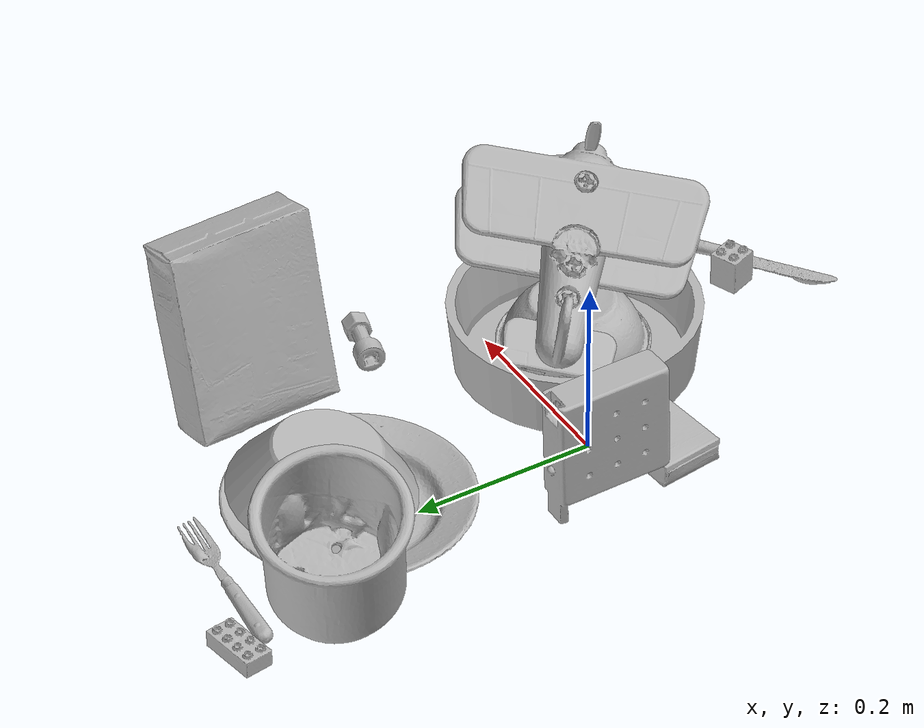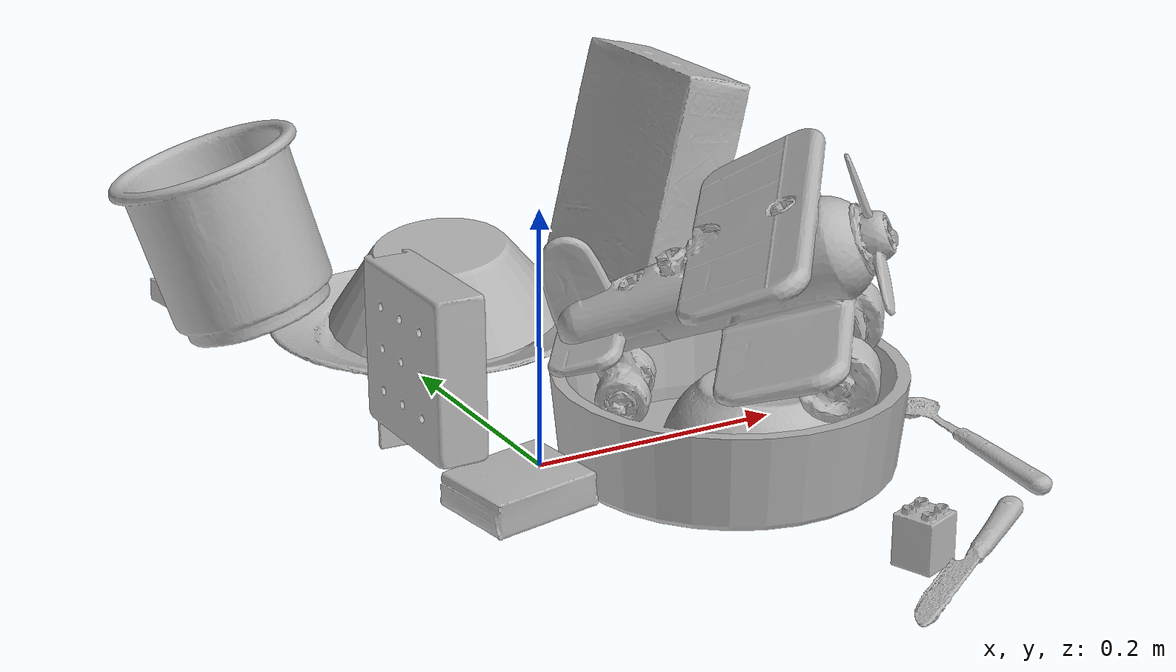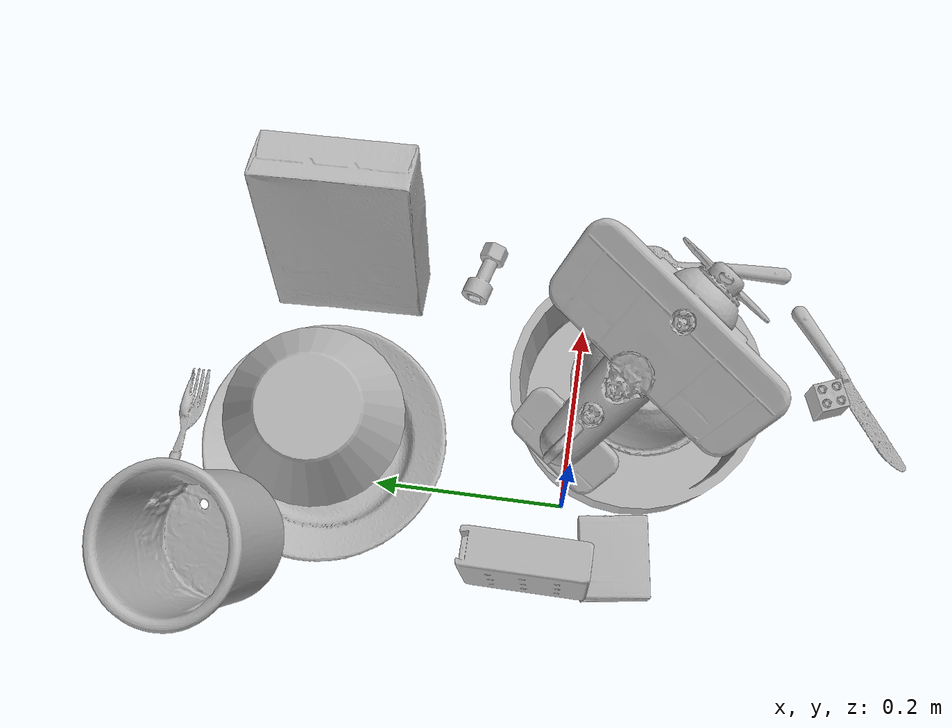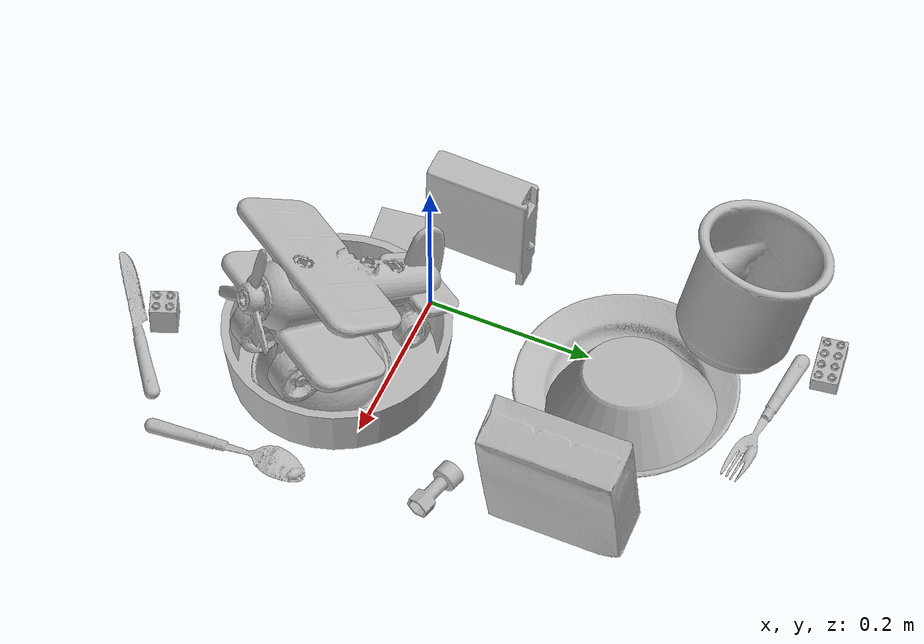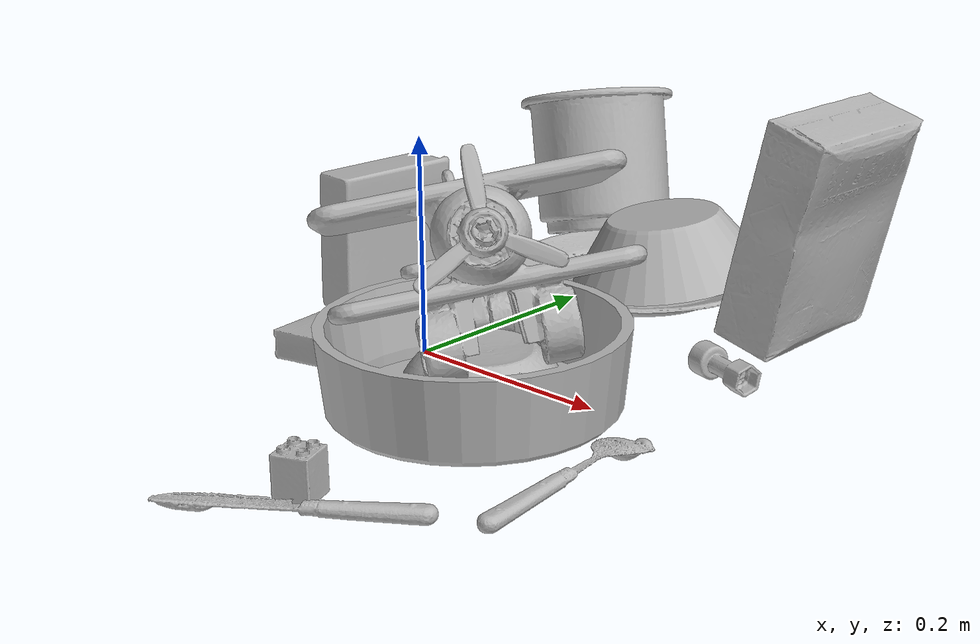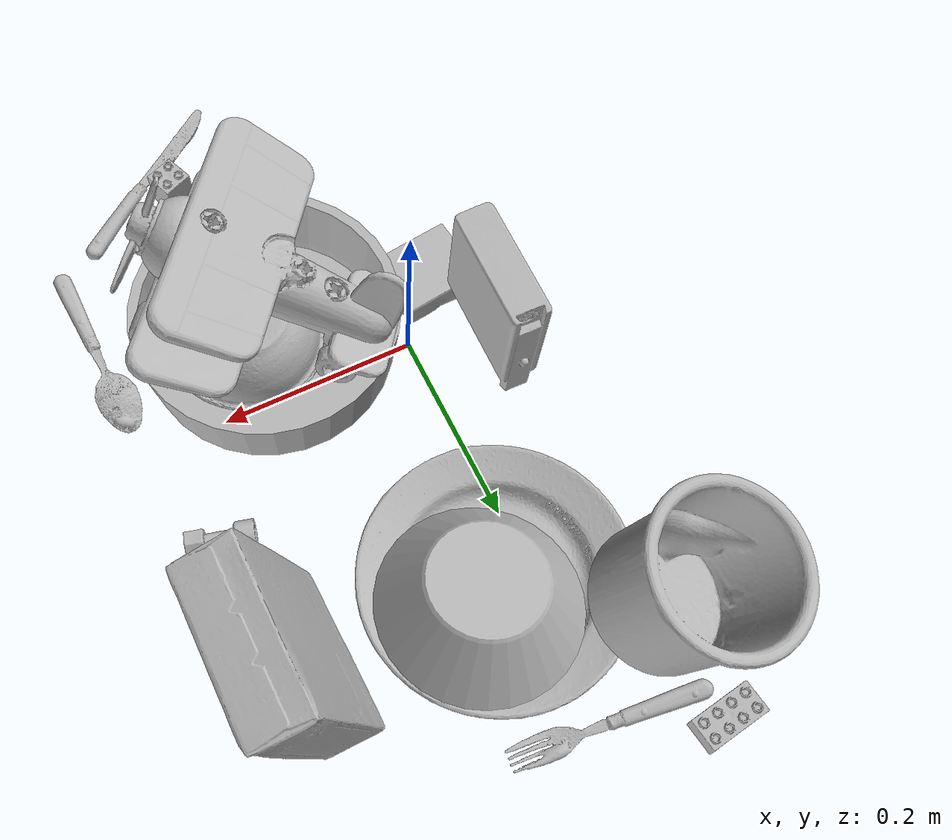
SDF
<sdf version="1.4">
  <world name="default">
    <light name="light1" type="point">
      <pose>0 0 1 0 0 0</pose>
      <diffuse>3 3 3 1</diffuse>
      <specular>3 3 3 1</specular>
    </light>
    <light name="light2" type="point">
      <pose>0 0.5 2 0 0 0</pose>
      <diffuse>1 1 1 1</diffuse>
      <specular>1 1 1 1</specular>
    </light>
    <light name="light3" type="point">
      <pose>0 0.5 2 0 0 0</pose>
      <diffuse>3 3 3 1</diffuse>
      <specular>3 3 3 1</specular>
    </light>
    <scene>
      <ambient>0.7 0.7 0.7</ambient>
    </scene>
    <model name="plate1">
      <link name="link_plate1">
        <collision name="default">
          <geometry>
            <mesh>
              <uri>model://plate/collision_meshes/collision.obj</uri>
              <scale>1.0 1.0 1.0</scale>
            </mesh>
          </geometry>
          <surface>
            <friction>
              <ode>
                <mu>0.5</mu>
                <mu2>0.5</mu2>
              </ode>
            </friction>
          <contact>
        <ode>
            <max_vel>0</max_vel>
            <min_depth>0.0001</min_depth>
            <kp>1e8</kp>
        </ode>
    </contact></surface>
        </collision>
        <visual name="default">
          <geometry>
            <mesh>
              <uri>model://plate/visual_meshes/visual.dae</uri>
              <scale>1.0 1.0 1.0</scale>
            </mesh>
          </geometry>
        </visual>
        <inertial>
          <mass>0.1516857147216797</mass>
          <pose>-0.0006044649053364992 0.00027825761935673654 -0.0010561972158029675 0.002218765199568956 -0.003225488596237322 0.4526153800388047</pose>
          <inertia>
            <ixx>0.00070958876</ixx>
            <iyy>0.0007028018</iyy>
            <izz>0.00138785</izz>
            <ixy>0</ixy>
            <ixz>0</ixz>
            <iyz>0</iyz>
          </inertia>
        </inertial>
      </link>
      <pose>0.034409523010253906 0.25961264967918396 0.013735402375459671 -1.9750560254049614e-05 -1.6433223964046853e-05 1.3377542097096438</pose>
    </model>
    <model name="plate2">
      <link name="link_plate2">
        <collision name="default">
          <geometry>
            <mesh>
              <uri>model://pan_tefal/collision_meshes/collision.obj</uri>
              <scale>1.0 1.0 1.0</scale>
            </mesh>
          </geometry>
          <surface>
            <friction>
              <ode>
                <mu>0.5</mu>
                <mu2>0.5</mu2>
              </ode>
            </friction>
          <contact>
        <ode>
            <max_vel>0</max_vel>
            <min_depth>0.0001</min_depth>
            <kp>1e8</kp>
        </ode>
    </contact></surface>
        </collision>
        <visual name="default">
          <geometry>
            <mesh>
              <uri>model://pan_tefal/visual_meshes/visual.dae</uri>
              <scale>1.0 1.0 1.0</scale>
            </mesh>
          </geometry>
        </visual>
        <inertial>
          <mass>1.0862284898757935</mass>
          <pose>-0.00018001910939347 3.2794348953757435e-05 -0.00851493515074253 0.0008190334899032376 -0.0003301482999058744 -0.3318501395419688</pose>
          <inertia>
            <ixx>0.0074981838</ixx>
            <iyy>0.007546525</iyy>
            <izz>0.013802713</izz>
            <ixy>0</ixy>
            <ixz>0</ixz>
            <iyz>0</iyz>
          </inertia>
        </inertial>
      </link>
      <pose>0.12502451241016388 -0.06135375052690506 0.03805006295442581 -4.142959909980993e-07 -1.7389965803333553e-07 2.27835147322301</pose>
    </model>
    <model name="bowl1">
      <link name="link_bowl1">
        <collision name="default">
          <geometry>
            <mesh>
              <uri>model://bowl_a/collision_meshes/collision.obj</uri>
              <scale>1.0 1.0 1.0</scale>
            </mesh>
          </geometry>
          <surface>
            <friction>
              <ode>
                <mu>0.5</mu>
                <mu2>0.5</mu2>
              </ode>
            </friction>
          <contact>
        <ode>
            <max_vel>0</max_vel>
            <min_depth>0.0001</min_depth>
            <kp>1e8</kp>
        </ode>
    </contact></surface>
        </collision>
        <visual name="default">
          <geometry>
            <mesh>
              <uri>model://bowl_a/visual_meshes/visual.dae</uri>
              <scale>1.0 1.0 1.0</scale>
            </mesh>
          </geometry>
        </visual>
        <inertial>
          <mass>0.23323877155780792</mass>
          <pose>0.0002786752884276211 4.7312129026977345e-05 -0.001376529224216938 -0.000980538139416196 -0.00109382495954127 -0.19123674059098103</pose>
          <inertia>
            <ixx>0.0006640416</ixx>
            <iyy>0.0006681184</iyy>
            <izz>0.0011810234</izz>
            <ixy>0</ixy>
            <ixz>0</ixz>
            <iyz>0</iyz>
          </inertia>
        </inertial>
      </link>
      <pose>0.056981734931468964 0.27422598004341125 0.0493699312210083 3.0626910080533536 0.09988682160589696 3.046483131313101</pose>
    </model>
    <model name="bowl2">
      <link name="link_bowl2">
        <collision name="default">
          <geometry>
            <mesh>
              <uri>model://bowl/collision_meshes/collision.obj</uri>
              <scale>1.0 1.0 1.0</scale>
            </mesh>
          </geometry>
          <surface>
            <friction>
              <ode>
                <mu>0.5</mu>
                <mu2>0.5</mu2>
              </ode>
            </friction>
          <contact>
        <ode>
            <max_vel>0</max_vel>
            <min_depth>0.0001</min_depth>
            <kp>1e8</kp>
        </ode>
    </contact></surface>
        </collision>
        <visual name="default">
          <geometry>
            <mesh>
              <uri>model://bowl/visual_meshes/visual.dae</uri>
              <scale>1.0 1.0 1.0</scale>
            </mesh>
          </geometry>
        </visual>
        <inertial>
          <mass>0.08787161856889725</mass>
          <pose>0.00020445531117729843 -0.0010302038863301277 -0.0008042651461437345 -0.015764035308279474 0.014546860922519275 0.7140443952173783</pose>
          <inertia>
            <ixx>0.00020184812</ixx>
            <iyy>0.00019733804</iyy>
            <izz>0.00033957793</izz>
            <ixy>0</ixy>
            <ixz>0</ixz>
            <iyz>0</iyz>
          </inertia>
        </inertial>
      </link>
      <pose>0.1454957276582718 -0.07274720817804337 0.034877944737672806 -3.1296835605043243 0.005008912456607935 1.4043145992927362</pose>
    </model>
    <model name="silverware1">
      <link name="link_silverware1">
        <collision name="default">
          <geometry>
            <mesh>
              <uri>model://spoon/collision_meshes/collision.obj</uri>
              <scale>1.0 1.0 1.0</scale>
            </mesh>
          </geometry>
          <surface>
            <friction>
              <ode>
                <mu>0.5</mu>
                <mu2>0.5</mu2>
              </ode>
            </friction>
          <contact>
        <ode>
            <max_vel>0</max_vel>
            <min_depth>0.0001</min_depth>
            <kp>1e8</kp>
        </ode>
    </contact></surface>
        </collision>
        <visual name="default">
          <geometry>
            <mesh>
              <uri>model://spoon/visual_meshes/visual.dae</uri>
              <scale>1.0 1.0 1.0</scale>
            </mesh>
          </geometry>
        </visual>
        <inertial>
          <mass>0.028818774968385696</mass>
          <pose>-0.0055263228714466095 -0.0016034181462600827 -0.0007271657814271748 0.03521556092832266 -0.039065843026344464 0.006150610888934851</pose>
          <inertia>
            <ixx>1.6029475e-06</ixx>
            <iyy>0.0001096545</iyy>
            <izz>0.000110445</izz>
            <ixy>0</ixy>
            <ixz>0</ixz>
            <iyz>0</iyz>
          </inertia>
        </inertial>
      </link>
      <pose>0.2923404574394226 -0.12623465061187744 0.010133746080100536 3.10494172175872 -0.06197683367509244 1.6160570616888128</pose>
    </model>
    <model name="box1">
      <link name="link_box1">
        <collision name="default">
          <geometry>
            <mesh>
              <uri>model://cracker_box/collision_meshes/collision.obj</uri>
              <scale>1.0 1.0 1.0</scale>
            </mesh>
          </geometry>
          <surface>
            <friction>
              <ode>
                <mu>0.5</mu>
                <mu2>0.5</mu2>
              </ode>
            </friction>
          <contact>
        <ode>
            <max_vel>0</max_vel>
            <min_depth>0.0001</min_depth>
            <kp>1e8</kp>
        </ode>
    </contact></surface>
        </collision>
        <visual name="default">
          <geometry>
            <mesh>
              <uri>model://cracker_box/visual_meshes/visual.dae</uri>
              <scale>1.0 1.0 1.0</scale>
            </mesh>
          </geometry>
        </visual>
        <inertial>
          <mass>2.9781224727630615</mass>
          <pose>0.0009464174509048462 0.00025434247800149024 -0.0017029534792527556 -0.0003162077703261406 -0.01110649239447325 0.0025467938390949236</pose>
          <inertia>
            <ixx>0.007575013</ixx>
            <iyy>0.012507835</iyy>
            <izz>0.017849829</izz>
            <ixy>0</ixy>
            <ixz>0</ixz>
            <iyz>0</iyz>
          </inertia>
        </inertial>
      </link>
      <pose>0.24340976774692535 0.2615981101989746 0.1084175780415535 -3.067804692599133 1.312249708520713 -3.049629635028553</pose>
    </model>
    <model name="box2">
      <link name="link_box2">
        <collision name="default">
          <geometry>
            <mesh>
              <uri>model://gelatin_box/collision_meshes/collision.obj</uri>
              <scale>1.0 1.0 1.0</scale>
            </mesh>
          </geometry>
          <surface>
            <friction>
              <ode>
                <mu>0.5</mu>
                <mu2>0.5</mu2>
              </ode>
            </friction>
          <contact>
        <ode>
            <max_vel>0</max_vel>
            <min_depth>0.0001</min_depth>
            <kp>1e8</kp>
        </ode>
    </contact></surface>
        </collision>
        <visual name="default">
          <geometry>
            <mesh>
              <uri>model://gelatin_box/visual_meshes/visual.dae</uri>
              <scale>1.0 1.0 1.0</scale>
            </mesh>
          </geometry>
        </visual>
        <inertial>
          <mass>0.16266882419586182</mass>
          <pose>0.0004319618456065655 0.00011156871914863586 -0.0003640321083366871 -0.0010503720968416132 -0.004755819155016646 0.016440559472150423</pose>
          <inertia>
            <ixx>0.00011483092</ixx>
            <iyy>8.202313e-05</iyy>
            <izz>0.00017479825</izz>
            <ixy>0</ixy>
            <ixz>0</ixz>
            <iyz>0</iyz>
          </inertia>
        </inertial>
      </link>
      <pose>-0.04976861551403999 -0.060081277042627335 0.015154507011175156 3.0937334923988904 -0.004963075067139746 1.7191702848511512</pose>
    </model>
    <model name="cup1">
      <link name="link_cup1">
        <collision name="default">
          <geometry>
            <mesh>
              <uri>model://f_cups/collision_meshes/collision.obj</uri>
              <scale>2.0 2.0 2.0</scale>
            </mesh>
          </geometry>
          <surface>
            <friction>
              <ode>
                <mu>0.5</mu>
                <mu2>0.5</mu2>
              </ode>
            </friction>
          <contact>
        <ode>
            <max_vel>0</max_vel>
            <min_depth>0.0001</min_depth>
            <kp>1e8</kp>
        </ode>
    </contact></surface>
        </collision>
        <visual name="default">
          <geometry>
            <mesh>
              <uri>model://f_cups/visual_meshes/visual.dae</uri>
              <scale>2.0 2.0 2.0</scale>
            </mesh>
          </geometry>
        </visual>
        <inertial>
          <mass>0.6683602333068848</mass>
          <pose>-0.006342936307191849 -0.0012480152072384953 -0.0073110745288431644 0.7862253042657107 -0.260793604503958 -0.18237387444081576</pose>
          <inertia>
            <ixx>0.0025131067</ixx>
            <iyy>0.0026362767</iyy>
            <izz>0.0027444381</izz>
            <ixy>0</ixy>
            <ixz>0</ixz>
            <iyz>0</iyz>
          </inertia>
        </inertial>
      </link>
      <pose>-0.09772560745477676 0.35365167260169983 0.08805651217699051 -0.31587856542602627 0.010299612208737782 0.9979104639641365</pose>
    </model>
    <model name="silverware2">
      <link name="link_silverware2">
        <collision name="default">
          <geometry>
            <mesh>
              <uri>model://knife/collision_meshes/collision.obj</uri>
              <scale>1.0 1.0 1.0</scale>
            </mesh>
          </geometry>
          <surface>
            <friction>
              <ode>
                <mu>0.5</mu>
                <mu2>0.5</mu2>
              </ode>
            </friction>
          <contact>
        <ode>
            <max_vel>0</max_vel>
            <min_depth>0.0001</min_depth>
            <kp>1e8</kp>
        </ode>
    </contact></surface>
        </collision>
        <visual name="default">
          <geometry>
            <mesh>
              <uri>model://knife/visual_meshes/visual.dae</uri>
              <scale>1.0 1.0 1.0</scale>
            </mesh>
          </geometry>
        </visual>
        <inertial>
          <mass>0.03087119571864605</mass>
          <pose>-0.023785250261425972 0.0015275123296305537 5.062009586254135e-05 0.07305987484925712 0.017248420899959087 -0.007409824084002247</pose>
          <inertia>
            <ixx>8.762499e-07</ixx>
            <iyy>0.000118602155</iyy>
            <izz>0.00011888435</izz>
            <ixy>0</ixy>
            <ixz>0</ixz>
            <iyz>0</iyz>
          </inertia>
        </inertial>
      </link>
      <pose>0.17059725522994995 -0.29381072521209717 0.007946611382067204 -0.023879917180575194 -0.014542822370084172 -2.5223052149761704</pose>
    </model>
    <model name="silverware3">
      <link name="link_silverware3">
        <collision name="default">
          <geometry>
            <mesh>
              <uri>model://fork/collision_meshes/collision.obj</uri>
              <scale>1.0 1.0 1.0</scale>
            </mesh>
          </geometry>
          <surface>
            <friction>
              <ode>
                <mu>0.5</mu>
                <mu2>0.5</mu2>
              </ode>
            </friction>
          <contact>
        <ode>
            <max_vel>0</max_vel>
            <min_depth>0.0001</min_depth>
            <kp>1e8</kp>
        </ode>
    </contact></surface>
        </collision>
        <visual name="default">
          <geometry>
            <mesh>
              <uri>model://fork/visual_meshes/visual.dae</uri>
              <scale>1.0 1.0 1.0</scale>
            </mesh>
          </geometry>
        </visual>
        <inertial>
          <mass>0.015284496359527111</mass>
          <pose>-0.02957003004848957 0.00046588233090005815 0.00032188600744120777 -0.013550803329795006 -0.010977829430356707 0.014453895799763906</pose>
          <inertia>
            <ixx>5.358081e-07</ixx>
            <iyy>3.9903432e-05</iyy>
            <izz>4.0143095e-05</izz>
            <ixy>0</ixy>
            <ixz>0</ixz>
            <iyz>0</iyz>
          </inertia>
        </inertial>
      </link>
      <pose>0.0012236107140779495 0.41893354058265686 0.005697614513337612 -0.17889358809026681 0.02516710622379067 -0.10732014413988747</pose>
    </model>
    <model name="toy1">
      <link name="link_toy1">
        <collision name="default">
          <geometry>
            <mesh>
              <uri>model://c_toy_airplane/collision_meshes/collision.obj</uri>
              <scale>1.0 1.0 1.0</scale>
            </mesh>
          </geometry>
          <surface>
            <friction>
              <ode>
                <mu>0.5</mu>
                <mu2>0.5</mu2>
              </ode>
            </friction>
          <contact>
        <ode>
            <max_vel>0</max_vel>
            <min_depth>0.0001</min_depth>
            <kp>1e8</kp>
        </ode>
    </contact></surface>
        </collision>
        <visual name="default">
          <geometry>
            <mesh>
              <uri>model://c_toy_airplane/visual_meshes/visual.dae</uri>
              <scale>1.0 1.0 1.0</scale>
            </mesh>
          </geometry>
        </visual>
        <inertial>
          <mass>0.014899278059601784</mass>
          <pose>-0.0002302424400113523 -4.428088118402229e-07 -0.006080529186874628 -0.00619304524108313 -0.016797611161866028 0.7655100812139064</pose>
          <inertia>
            <ixx>6.841441e-06</ixx>
            <iyy>6.822133e-06</iyy>
            <izz>1.6062353e-06</izz>
            <ixy>0</ixy>
            <ixz>0</ixz>
            <iyz>0</iyz>
          </inertia>
        </inertial>
      </link>
      <pose>0.2503190040588379 0.11687454581260681 0.015064425766468048 1.5811075392336023 -0.5802099873109289 1.3047148779461166</pose>
    </model>
    <model name="toy2">
      <link name="link_toy2">
        <collision name="default">
          <geometry>
            <mesh>
              <uri>model://nine_hole_peg_test/collision_meshes/collision.obj</uri>
              <scale>1.0 1.0 1.0</scale>
            </mesh>
          </geometry>
          <surface>
            <friction>
              <ode>
                <mu>0.5</mu>
                <mu2>0.5</mu2>
              </ode>
            </friction>
          <contact>
        <ode>
            <max_vel>0</max_vel>
            <min_depth>0.0001</min_depth>
            <kp>1e8</kp>
        </ode>
    </contact></surface>
        </collision>
        <visual name="default">
          <geometry>
            <mesh>
              <uri>model://nine_hole_peg_test/visual_meshes/visual.dae</uri>
              <scale>1.0 1.0 1.0</scale>
            </mesh>
          </geometry>
        </visual>
        <inertial>
          <mass>0.8674170970916748</mass>
          <pose>-0.004617386031895876 -0.009647614322602749 2.6460689696250483e-05 -0.0014666783129250742 0.0007194188660534222 -0.6342410037611789</pose>
          <inertia>
            <ixx>0.0013563493</ixx>
            <iyy>0.0012664091</iyy>
            <izz>0.0023767245</izz>
            <ixy>0</ixy>
            <ixz>0</ixz>
            <iyz>0</iyz>
          </inertia>
        </inertial>
      </link>
      <pose>-0.07863610237836838 0.0340043380856514 0.08084358274936676 -1.5697995664347912 0.03422533377126495 1.557311488507044</pose>
    </model>
    <model name="toy3">
      <link name="link_toy3">
        <collision name="default">
          <geometry>
            <mesh>
              <uri>model://a_toy_airplane/collision_meshes/collision.obj</uri>
              <scale>1.0 1.0 1.0</scale>
            </mesh>
          </geometry>
          <surface>
            <friction>
              <ode>
                <mu>0.5</mu>
                <mu2>0.5</mu2>
              </ode>
            </friction>
          <contact>
        <ode>
            <max_vel>0</max_vel>
            <min_depth>0.0001</min_depth>
            <kp>1e8</kp>
        </ode>
    </contact></surface>
        </collision>
        <visual name="default">
          <geometry>
            <mesh>
              <uri>model://a_toy_airplane/visual_meshes/visual.dae</uri>
              <scale>1.0 1.0 1.0</scale>
            </mesh>
          </geometry>
        </visual>
        <inertial>
          <mass>1.0043106079101562</mass>
          <pose>0.02516508847475052 -0.003707321360707283 -0.0011962434509769082 -0.01201694293172648 -0.14663499629613377 0.0041490900747424425</pose>
          <inertia>
            <ixx>0.0036471337</ixx>
            <iyy>0.0053146123</iyy>
            <izz>0.0062227584</izz>
            <ixy>0</ixy>
            <ixz>0</ixz>
            <iyz>0</iyz>
          </inertia>
        </inertial>
      </link>
      <pose>0.12191744148731232 -0.0514594241976738 0.1367569863796234 0.1485222646189066 -0.2036963904549725 -0.673782573586923</pose>
    </model>
    <model name="toy4">
      <link name="link_toy4">
        <collision name="default">
          <geometry>
            <mesh>
              <uri>model://c_lego_duplo/collision_meshes/collision.obj</uri>
              <scale>1.0 1.0 1.0</scale>
            </mesh>
          </geometry>
          <surface>
            <friction>
              <ode>
                <mu>0.5</mu>
                <mu2>0.5</mu2>
              </ode>
            </friction>
          <contact>
        <ode>
            <max_vel>0</max_vel>
            <min_depth>0.0001</min_depth>
            <kp>1e8</kp>
        </ode>
    </contact></surface>
        </collision>
        <visual name="default">
          <geometry>
            <mesh>
              <uri>model://c_lego_duplo/visual_meshes/visual.dae</uri>
              <scale>1.0 1.0 1.0</scale>
            </mesh>
          </geometry>
        </visual>
        <inertial>
          <mass>0.019874408841133118</mass>
          <pose>0.0003164595691487193 0.0001946465636137873 0.0010453156428411603 -0.01152079101413275 0.005900072799474436 0.031100350485514378</pose>
          <inertia>
            <ixx>7.648045e-06</ixx>
            <iyy>2.443061e-06</iyy>
            <izz>8.937529e-06</izz>
            <ixy>0</ixy>
            <ixz>0</ixz>
            <iyz>0</iyz>
          </inertia>
        </inertial>
      </link>
      <pose>-0.09416316449642181 0.4596113860607147 0.011981485411524773 0.008019302201419791 -0.0020916777001860117 -1.4448230042052808</pose>
    </model>
    <model name="toy5">
      <link name="link_toy5">
        <collision name="default">
          <geometry>
            <mesh>
              <uri>model://b_lego_duplo/collision_meshes/collision.obj</uri>
              <scale>1.0 1.0 1.0</scale>
            </mesh>
          </geometry>
          <surface>
            <friction>
              <ode>
                <mu>0.5</mu>
                <mu2>0.5</mu2>
              </ode>
            </friction>
          <contact>
        <ode>
            <max_vel>0</max_vel>
            <min_depth>0.0001</min_depth>
            <kp>1e8</kp>
        </ode>
    </contact></surface>
        </collision>
        <visual name="default">
          <geometry>
            <mesh>
              <uri>model://b_lego_duplo/visual_meshes/visual.dae</uri>
              <scale>1.0 1.0 1.0</scale>
            </mesh>
          </geometry>
        </visual>
        <inertial>
          <mass>0.031542204320430756</mass>
          <pose>-0.0001105302435462363 -9.152341590379365e-06 0.001929428894072771 -0.03749493031375769 -0.026354084635952003 0.4518990108557965</pose>
          <inertia>
            <ixx>6.4553496e-06</ixx>
            <iyy>6.4987444e-06</iyy>
            <izz>5.7515063e-06</izz>
            <ixy>0</ixy>
            <ixz>0</ixz>
            <iyz>0</iyz>
          </inertia>
        </inertial>
      </link>
      <pose>0.1508568972349167 -0.2703012228012085 0.021814987063407898 2.7357062616964026e-06 1.3001374536633194e-06 1.9480818590931104</pose>
    </model>
  <physics type="ode">
      <max_contacts>50</max_contacts>
      <ode>
        <solver>
          <type>quick</type>
          <iters>75</iters>
        </solver>
        <constraints>
          <contact_max_correcting_vel>0</contact_max_correcting_vel>
          <contact_surface_layer>0</contact_surface_layer>
        </constraints>
      </ode>
    </physics></world>
</sdf>
